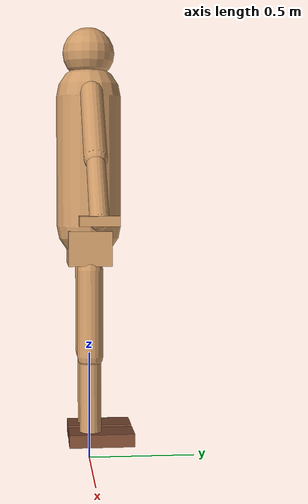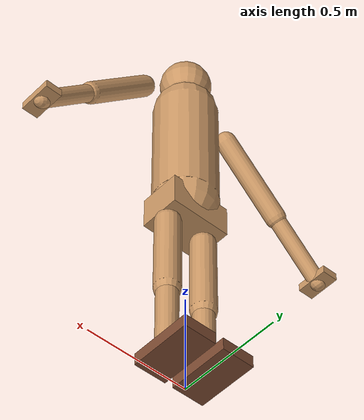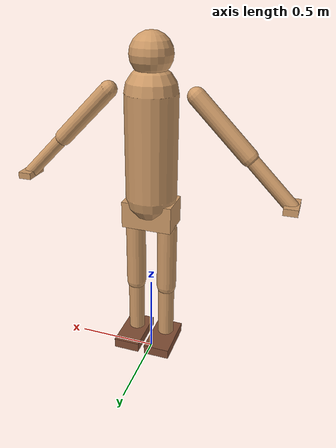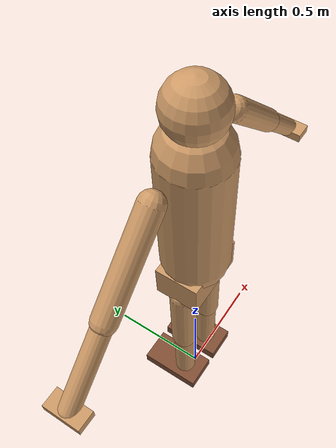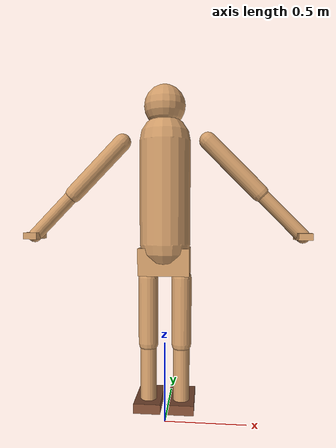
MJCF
<?xml version="1.0"?>
<mujoco model="martial_artist">
    <worldbody>
        <body name="torso" pos="0 0 1.4">
            <joint name="torso_joint" type="free"/>
            <geom name="torso_geom" type="capsule" size="0.15 0.3" rgba="0.8 0.6 0.4 1" mass="10"/>

            <!-- Head -->
            <body name="head" pos="0 0 0.5">
                <joint name="neck_pitch" type="hinge" axis="0 1 0" range="-45 45"/>
                <joint name="neck_yaw" type="hinge" axis="0 0 1" range="-90 90"/>
                <geom name="head_geom" type="sphere" size="0.12" rgba="0.8 0.6 0.4 1" mass="3"/>
            </body>

            <!-- Right arm -->
            <body name="right_shoulder" pos="0.25 0 0.3">
                <joint name="right_shoulder_pitch" type="hinge" axis="0 1 0" range="-180 90"/>
                <joint name="right_shoulder_roll" type="hinge" axis="1 0 0" range="-90 180"/>
                <joint name="right_shoulder_yaw" type="hinge" axis="0 0 1" range="-90 90"/>
                <geom name="right_upper_arm" type="capsule" fromto="0 0 0 0.3 0 -0.3" size="0.05" rgba="0.8 0.6 0.4 1" mass="2"/>

                <body name="right_elbow" pos="0.3 0 -0.3">
                    <joint name="right_elbow_pitch" type="hinge" axis="0 1 0" range="0 150"/>
                    <geom name="right_forearm" type="capsule" fromto="0 0 0 0.25 0 -0.25" size="0.04" rgba="0.8 0.6 0.4 1" mass="1.5"/>

                    <body name="right_hand" pos="0.25 0 -0.25">
                        <joint name="right_wrist_pitch" type="hinge" axis="0 1 0" range="-90 90"/>
                        <joint name="right_wrist_roll" type="hinge" axis="1 0 0" range="-45 45"/>
                        <geom name="right_hand_geom" type="box" size="0.04 0.08 0.02" rgba="0.8 0.6 0.4 1" mass="0.5"/>
                        <site name="right_hand" pos="0 0 0" size="0.01"/>
                    </body>
                </body>
            </body>

            <!-- Left arm (mirror of right) -->
            <body name="left_shoulder" pos="-0.25 0 0.3">
                <joint name="left_shoulder_pitch" type="hinge" axis="0 1 0" range="-180 90"/>
                <joint name="left_shoulder_roll" type="hinge" axis="1 0 0" range="-180 90"/>
                <joint name="left_shoulder_yaw" type="hinge" axis="0 0 1" range="-90 90"/>
                <geom name="left_upper_arm" type="capsule" fromto="0 0 0 -0.3 0 -0.3" size="0.05" rgba="0.8 0.6 0.4 1" mass="2"/>

                <body name="left_elbow" pos="-0.3 0 -0.3">
                    <joint name="left_elbow_pitch" type="hinge" axis="0 1 0" range="0 150"/>
                    <geom name="left_forearm" type="capsule" fromto="0 0 0 -0.25 0 -0.25" size="0.04" rgba="0.8 0.6 0.4 1" mass="1.5"/>

                    <body name="left_hand" pos="-0.25 0 -0.25">
                        <joint name="left_wrist_pitch" type="hinge" axis="0 1 0" range="-90 90"/>
                        <joint name="left_wrist_roll" type="hinge" axis="1 0 0" range="-45 45"/>
                        <geom name="left_hand_geom" type="box" size="0.04 0.08 0.02" rgba="0.8 0.6 0.4 1" mass="0.5"/>
                        <site name="left_hand" pos="0 0 0" size="0.01"/>
                    </body>
                </body>
            </body>

            <!-- Pelvis and legs -->
            <body name="pelvis" pos="0 0 -0.4">
                <joint name="waist_pitch" type="hinge" axis="0 1 0" range="-45 45"/>
                <joint name="waist_yaw" type="hinge" axis="0 0 1" range="-90 90"/>
                <geom name="pelvis_geom" type="box" size="0.15 0.1 0.08" rgba="0.8 0.6 0.4 1" mass="5"/>

                <!-- Right leg -->
                <body name="right_hip" pos="0.1 0 -0.1">
                    <joint name="right_hip_pitch" type="hinge" axis="0 1 0" range="-120 45"/>
                    <joint name="right_hip_roll" type="hinge" axis="1 0 0" range="-45 45"/>
                    <joint name="right_hip_yaw" type="hinge" axis="0 0 1" range="-45 45"/>
                    <geom name="right_thigh" type="capsule" fromto="0 0 0 0 0 -0.4" size="0.06" rgba="0.8 0.6 0.4 1" mass="4"/>

                    <body name="right_knee" pos="0 0 -0.4">
                        <joint name="right_knee_pitch" type="hinge" axis="0 1 0" range="0 150"/>
                        <geom name="right_shin" type="capsule" fromto="0 0 0 0 0 -0.35" size="0.05" rgba="0.8 0.6 0.4 1" mass="3"/>

                        <body name="right_ankle" pos="0 0 -0.35">
                            <joint name="right_ankle_pitch" type="hinge" axis="0 1 0" range="-45 45"/>
                            <joint name="right_ankle_roll" type="hinge" axis="1 0 0" range="-30 30"/>
                            <geom name="right_foot" type="box" size="0.08 0.15 0.03" pos="0 0.05 -0.03" rgba="0.5 0.3 0.2 1" mass="1"/>
                            <site name="right_foot" pos="0 0 0" size="0.01"/>
                        </body>
                    </body>
                </body>

                <!-- Left leg (mirror of right) -->
                <body name="left_hip" pos="-0.1 0 -0.1">
                    <joint name="left_hip_pitch" type="hinge" axis="0 1 0" range="-120 45"/>
                    <joint name="left_hip_roll" type="hinge" axis="1 0 0" range="-45 45"/>
                    <joint name="left_hip_yaw" type="hinge" axis="0 0 1" range="-45 45"/>
                    <geom name="left_thigh" type="capsule" fromto="0 0 0 0 0 -0.4" size="0.06" rgba="0.8 0.6 0.4 1" mass="4"/>

                    <body name="left_knee" pos="0 0 -0.4">
                        <joint name="left_knee_pitch" type="hinge" axis="0 1 0" range="0 150"/>
                        <geom name="left_shin" type="capsule" fromto="0 0 0 0 0 -0.35" size="0.05" rgba="0.8 0.6 0.4 1" mass="3"/>

                        <body name="left_ankle" pos="0 0 -0.35">
                            <joint name="left_ankle_pitch" type="hinge" axis="0 1 0" range="-45 45"/>
                            <joint name="left_ankle_roll" type="hinge" axis="1 0 0" range="-30 30"/>
                            <geom name="left_foot" type="box" size="0.08 0.15 0.03" pos="0 0.05 -0.03" rgba="0.5 0.3 0.2 1" mass="1"/>
                            <site name="left_foot" pos="0 0 0" size="0.01"/>
                        </body>
                    </body>
                </body>
            </body>
        </body>
    </worldbody>

    <actuator>
        <!-- Head actuators -->
        <motor name="neck_pitch_motor" joint="neck_pitch" ctrlrange="-50 50"/>
        <motor name="neck_yaw_motor" joint="neck_yaw" ctrlrange="-50 50"/>

        <!-- Right arm actuators -->
        <motor name="right_shoulder_pitch_motor" joint="right_shoulder_pitch" ctrlrange="-100 100"/>
        <motor name="right_shoulder_roll_motor" joint="right_shoulder_roll" ctrlrange="-100 100"/>
        <motor name="right_shoulder_yaw_motor" joint="right_shoulder_yaw" ctrlrange="-100 100"/>
        <motor name="right_elbow_motor" joint="right_elbow_pitch" ctrlrange="-80 80"/>
        <motor name="right_wrist_pitch_motor" joint="right_wrist_pitch" ctrlrange="-40 40"/>
        <motor name="right_wrist_roll_motor" joint="right_wrist_roll" ctrlrange="-40 40"/>

        <!-- Left arm actuators -->
        <motor name="left_shoulder_pitch_motor" joint="left_shoulder_pitch" ctrlrange="-100 100"/>
        <motor name="left_shoulder_roll_motor" joint="left_shoulder_roll" ctrlrange="-100 100"/>
        <motor name="left_shoulder_yaw_motor" joint="left_shoulder_yaw" ctrlrange="-100 100"/>
        <motor name="left_elbow_motor" joint="left_elbow_pitch" ctrlrange="-80 80"/>
        <motor name="left_wrist_pitch_motor" joint="left_wrist_pitch" ctrlrange="-40 40"/>
        <motor name="left_wrist_roll_motor" joint="left_wrist_roll" ctrlrange="-40 40"/>

        <!-- Waist actuators -->
        <motor name="waist_pitch_motor" joint="waist_pitch" ctrlrange="-50 50"/>
        <motor name="waist_yaw_motor" joint="waist_yaw" ctrlrange="-50 50"/>

        <!-- Right leg actuators -->
        <motor name="right_hip_pitch_motor" joint="right_hip_pitch" ctrlrange="-150 150"/>
        <motor name="right_hip_roll_motor" joint="right_hip_roll" ctrlrange="-100 100"/>
        <motor name="right_hip_yaw_motor" joint="right_hip_yaw" ctrlrange="-100 100"/>
        <motor name="right_knee_motor" joint="right_knee_pitch" ctrlrange="-120 120"/>
        <motor name="right_ankle_pitch_motor" joint="right_ankle_pitch" ctrlrange="-60 60"/>
        <motor name="right_ankle_roll_motor" joint="right_ankle_roll" ctrlrange="-60 60"/>

        <!-- Left leg actuators -->
        <motor name="left_hip_pitch_motor" joint="left_hip_pitch" ctrlrange="-150 150"/>
        <motor name="left_hip_roll_motor" joint="left_hip_roll" ctrlrange="-100 100"/>
        <motor name="left_hip_yaw_motor" joint="left_hip_yaw" ctrlrange="-100 100"/>
        <motor name="left_knee_motor" joint="left_knee_pitch" ctrlrange="-120 120"/>
        <motor name="left_ankle_pitch_motor" joint="left_ankle_pitch" ctrlrange="-60 60"/>
        <motor name="left_ankle_roll_motor" joint="left_ankle_roll" ctrlrange="-60 60"/>
    </actuator>
</mujoco>
